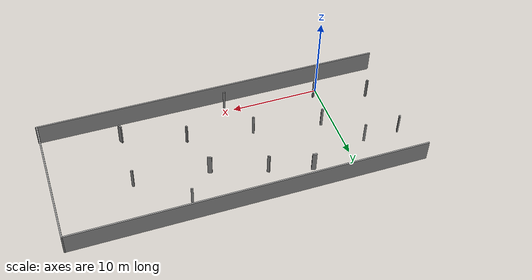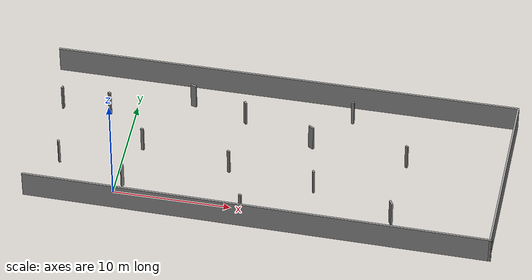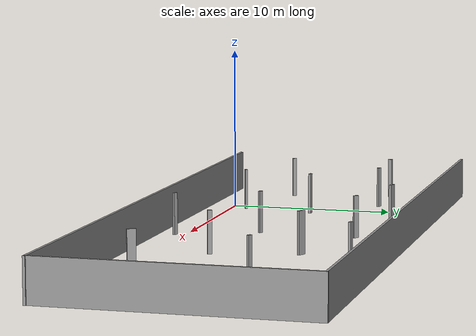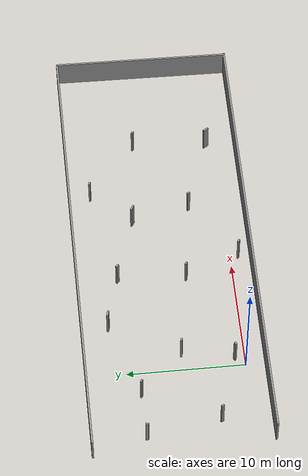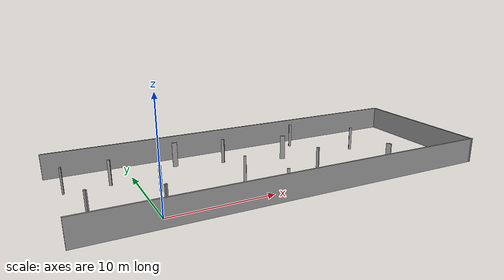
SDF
<?xml version='1.0'?>
<sdf version='1.6'>
  <model name='pole_field'>
    <pose frame=''>12.3477 5.75607 0 0 -0 0</pose>
    <link name='Wall_11'>
      <collision name='Wall_11_Collision'>
        <geometry>
          <box>
            <size>0.25 0.15 2.5</size>
          </box>
        </geometry>
        <pose frame=''>0 0 1.25 0 -0 0</pose>
      </collision>
      <visual name='Wall_11_Visual'>
        <pose frame=''>0 0 1.25 0 -0 0</pose>
        <geometry>
          <box>
            <size>0.25 0.15 2.5</size>
          </box>
        </geometry>
        <material>
          <script>
            <uri>file://media/materials/scripts/gazebo.material</uri>
            <name>Gazebo/Grey</name>
          </script>
          <ambient>1 1 1 1</ambient>
        </material>
        <meta>
          <layer>0</layer>
        </meta>
      </visual>
      <pose frame=''>-14.5401 3.1941 0 0 -0 -0.523599</pose>
    </link>
    <link name='Wall_15'>
      <collision name='Wall_15_Collision'>
        <geometry>
          <box>
            <size>0.25 0.15 2.5</size>
          </box>
        </geometry>
        <pose frame=''>0 0 1.25 0 -0 0</pose>
      </collision>
      <visual name='Wall_15_Visual'>
        <pose frame=''>0 0 1.25 0 -0 0</pose>
        <geometry>
          <box>
            <size>0.25 0.15 2.5</size>
          </box>
        </geometry>
        <material>
          <script>
            <uri>file://media/materials/scripts/gazebo.material</uri>
            <name>Gazebo/Grey</name>
          </script>
          <ambient>1 1 1 1</ambient>
        </material>
        <meta>
          <layer>0</layer>
        </meta>
      </visual>
      <pose frame=''>-17.5302 -3.12158 0 0 -0 -1.0472</pose>
    </link>
    <link name='Wall_19'>
      <collision name='Wall_19_Collision'>
        <geometry>
          <box>
            <size>0.25 0.15 2.5</size>
          </box>
        </geometry>
        <pose frame=''>0 0 1.25 0 -0 0</pose>
      </collision>
      <visual name='Wall_19_Visual'>
        <pose frame=''>0 0 1.25 0 -0 0</pose>
        <geometry>
          <box>
            <size>0.25 0.15 2.5</size>
          </box>
        </geometry>
        <material>
          <script>
            <uri>file://media/materials/scripts/gazebo.material</uri>
            <name>Gazebo/Grey</name>
          </script>
          <ambient>1 1 1 1</ambient>
        </material>
        <meta>
          <layer>0</layer>
        </meta>
      </visual>
      <pose frame=''>-10.9265 -0.473205 0 0 -0 -0.261799</pose>
    </link>
    <link name='Wall_21'>
      <collision name='Wall_21_Collision'>
        <geometry>
          <box>
            <size>0.5 0.15 2.5</size>
          </box>
        </geometry>
        <pose frame=''>0 0 1.25 0 -0 0</pose>
      </collision>
      <visual name='Wall_21_Visual'>
        <pose frame=''>0 0 1.25 0 -0 0</pose>
        <geometry>
          <box>
            <size>0.5 0.15 2.5</size>
          </box>
        </geometry>
        <material>
          <script>
            <uri>file://media/materials/scripts/gazebo.material</uri>
            <name>Gazebo/Grey</name>
          </script>
          <ambient>1 1 1 1</ambient>
        </material>
        <meta>
          <layer>0</layer>
        </meta>
      </visual>
      <pose frame=''>3.02036 2.32497 0 0 -0 -0.523599</pose>
    </link>
    <link name='Wall_24'>
      <collision name='Wall_24_Collision'>
        <geometry>
          <box>
            <size>0.5 0.15 2.5</size>
          </box>
        </geometry>
        <pose frame=''>0 0 1.25 0 -0 0</pose>
      </collision>
      <visual name='Wall_24_Visual'>
        <pose frame=''>0 0 1.25 0 -0 0</pose>
        <geometry>
          <box>
            <size>0.5 0.15 2.5</size>
          </box>
        </geometry>
        <material>
          <script>
            <uri>file://media/materials/scripts/gazebo.material</uri>
            <name>Gazebo/Grey</name>
          </script>
          <ambient>1 1 1 1</ambient>
        </material>
        <meta>
          <layer>0</layer>
        </meta>
      </visual>
      <pose frame=''>-7.69246 5.36728 0 0 -0 -0.261799</pose>
    </link>
    <link name='Wall_27'>
      <collision name='Wall_27_Collision'>
        <geometry>
          <box>
            <size>0.25 0.15 2.5</size>
          </box>
        </geometry>
        <pose frame=''>0 0 1.25 0 -0 0</pose>
      </collision>
      <visual name='Wall_27_Visual'>
        <pose frame=''>0 0 1.25 0 -0 0</pose>
        <geometry>
          <box>
            <size>0.25 0.15 2.5</size>
          </box>
        </geometry>
        <material>
          <script>
            <uri>file://media/materials/scripts/gazebo.material</uri>
            <name>Gazebo/Grey</name>
          </script>
          <ambient>1 1 1 1</ambient>
        </material>
        <meta>
          <layer>0</layer>
        </meta>
      </visual>
      <pose frame=''>-11.7257 -4.8722 0 0 -0 -2.61799</pose>
    </link>
    <link name='Wall_29'>
      <collision name='Wall_29_Collision'>
        <geometry>
          <box>
            <size>0.25 0.15 2.5</size>
          </box>
        </geometry>
        <pose frame=''>0 0 1.25 0 -0 0</pose>
      </collision>
      <visual name='Wall_29_Visual'>
        <pose frame=''>0 0 1.25 0 -0 0</pose>
        <geometry>
          <box>
            <size>0.25 0.15 2.5</size>
          </box>
        </geometry>
        <material>
          <script>
            <uri>file://media/materials/scripts/gazebo.material</uri>
            <name>Gazebo/Grey</name>
          </script>
          <ambient>1 1 1 1</ambient>
        </material>
        <meta>
          <layer>0</layer>
        </meta>
      </visual>
      <pose frame=''>-3.28447 -1.7019 0 0 -0 -0.523599</pose>
    </link>
    <link name='Wall_31'>
      <collision name='Wall_31_Collision'>
        <geometry>
          <box>
            <size>0.25 0.15 2.5</size>
          </box>
        </geometry>
        <pose frame=''>0 0 1.25 0 -0 0</pose>
      </collision>
      <visual name='Wall_31_Visual'>
        <pose frame=''>0 0 1.25 0 -0 0</pose>
        <geometry>
          <box>
            <size>0.25 0.15 2.5</size>
          </box>
        </geometry>
        <material>
          <script>
            <uri>file://media/materials/scripts/gazebo.material</uri>
            <name>Gazebo/Grey</name>
          </script>
          <ambient>1 1 1 1</ambient>
        </material>
        <meta>
          <layer>0</layer>
        </meta>
      </visual>
      <pose frame=''>4.10195 -2.69665 0 0 -0 -1.0472</pose>
    </link>
    <link name='Wall_33'>
      <collision name='Wall_33_Collision'>
        <geometry>
          <box>
            <size>0.25 0.15 2.5</size>
          </box>
        </geometry>
        <pose frame=''>0 0 1.25 0 -0 0</pose>
      </collision>
      <visual name='Wall_33_Visual'>
        <pose frame=''>0 0 1.25 0 -0 0</pose>
        <geometry>
          <box>
            <size>0.25 0.15 2.5</size>
          </box>
        </geometry>
        <material>
          <script>
            <uri>file://media/materials/scripts/gazebo.material</uri>
            <name>Gazebo/Grey</name>
          </script>
          <ambient>1 1 1 1</ambient>
        </material>
        <meta>
          <layer>0</layer>
        </meta>
      </visual>
      <pose frame=''>-1.41295 -6.4214 0 0 -0 -0.523599</pose>
    </link>
    <link name='Wall_35'>
      <collision name='Wall_35_Collision'>
        <geometry>
          <box>
            <size>0.25 0.15 2.5</size>
          </box>
        </geometry>
        <pose frame=''>0 0 1.25 0 -0 0</pose>
      </collision>
      <visual name='Wall_35_Visual'>
        <pose frame=''>0 0 1.25 0 -0 0</pose>
        <geometry>
          <box>
            <size>0.25 0.15 2.5</size>
          </box>
        </geometry>
        <material>
          <script>
            <uri>file://media/materials/scripts/gazebo.material</uri>
            <name>Gazebo/Grey</name>
          </script>
          <ambient>1 1 1 1</ambient>
        </material>
        <meta>
          <layer>0</layer>
        </meta>
      </visual>
      <pose frame=''>5.99677 5.79626 0 0 -0 -0.261799</pose>
    </link>
    <link name='Wall_37'>
      <collision name='Wall_37_Collision'>
        <geometry>
          <box>
            <size>0.25 0.15 2.5</size>
          </box>
        </geometry>
        <pose frame=''>0 0 1.25 0 -0 0</pose>
      </collision>
      <visual name='Wall_37_Visual'>
        <pose frame=''>0 0 1.25 0 -0 0</pose>
        <geometry>
          <box>
            <size>0.25 0.15 2.5</size>
          </box>
        </geometry>
        <material>
          <script>
            <uri>file://media/materials/scripts/gazebo.material</uri>
            <name>Gazebo/Grey</name>
          </script>
          <ambient>1 1 1 1</ambient>
        </material>
        <meta>
          <layer>0</layer>
        </meta>
      </visual>
      <pose frame=''>11.2809 1.55293 0 0 -0 -0.523599</pose>
    </link>
    <link name='Wall_39'>
      <collision name='Wall_39_Collision'>
        <geometry>
          <box>
            <size>0.5 0.15 2.5</size>
          </box>
        </geometry>
        <pose frame=''>0 0 1.25 0 -0 0</pose>
      </collision>
      <visual name='Wall_39_Visual'>
        <pose frame=''>0 0 1.25 0 -0 0</pose>
        <geometry>
          <box>
            <size>0.5 0.15 2.5</size>
          </box>
        </geometry>
        <material>
          <script>
            <uri>file://media/materials/scripts/gazebo.material</uri>
            <name>Gazebo/Grey</name>
          </script>
          <ambient>1 1 1 1</ambient>
        </material>
        <meta>
          <layer>0</layer>
        </meta>
      </visual>
      <pose frame=''>10.9996 -5.00191 0 0 -0 -1.0472</pose>
    </link>
    <link name='Wall_41'>
      <collision name='Wall_41_Collision'>
        <geometry>
          <box>
            <size>0.3 0.15 2.5</size>
          </box>
        </geometry>
        <pose frame=''>0 0 1.25 0 -0 0</pose>
      </collision>
      <visual name='Wall_41_Visual'>
        <pose frame=''>0 0 1.25 0 -0 0</pose>
        <geometry>
          <box>
            <size>0.3 0.15 2.5</size>
          </box>
        </geometry>
        <material>
          <script>
            <uri>file://media/materials/scripts/gazebo.material</uri>
            <name>Gazebo/Grey</name>
          </script>
          <ambient>1 1 1 1</ambient>
        </material>
        <meta>
          <layer>0</layer>
        </meta>
      </visual>
      <pose frame=''>-2.97395 4.15345 0 0 -0 2.35619</pose>
    </link>
    <link name='Wall_5'>
      <collision name='Wall_5_Collision'>
        <geometry>
          <box>
            <size>39.75 0.15 2.5</size>
          </box>
        </geometry>
        <pose frame=''>0 0 1.25 0 -0 0</pose>
      </collision>
      <visual name='Wall_5_Visual'>
        <pose frame=''>0 0 1.25 0 -0 0</pose>
        <geometry>
          <box>
            <size>39.75 0.15 2.5</size>
          </box>
        </geometry>
        <material>
          <script>
            <uri>file://media/materials/scripts/gazebo.material</uri>
            <name>Gazebo/Grey</name>
          </script>
          <ambient>1 1 1 1</ambient>
        </material>
        <meta>
          <layer>0</layer>
        </meta>
      </visual>
      <pose frame=''>-0.041279 7.65758 0 0 -0 0</pose>
    </link>
    <link name='Wall_6'>
      <collision name='Wall_6_Collision'>
        <geometry>
          <box>
            <size>15.4671 0.15 2.5</size>
          </box>
        </geometry>
        <pose frame=''>0 0 1.25 0 -0 0</pose>
      </collision>
      <visual name='Wall_6_Visual'>
        <pose frame=''>0 0 1.25 0 -0 0</pose>
        <geometry>
          <box>
            <size>15.4671 0.15 2.5</size>
          </box>
        </geometry>
        <material>
          <script>
            <uri>file://media/materials/scripts/gazebo.material</uri>
            <name>Gazebo/Grey</name>
          </script>
          <ambient>1 1 1 1</ambient>
        </material>
        <meta>
          <layer>0</layer>
        </meta>
      </visual>
      <pose frame=''>19.718 -0 0 0 -0 -1.58673</pose>
    </link>
    <link name='Wall_7'>
      <collision name='Wall_7_Collision'>
        <geometry>
          <box>
            <size>39.4494 0.15 2.5</size>
          </box>
        </geometry>
        <pose frame=''>0 0 1.25 0 -0 0</pose>
      </collision>
      <visual name='Wall_7_Visual'>
        <pose frame=''>0 0 1.25 0 -0 0</pose>
        <geometry>
          <box>
            <size>39.4494 0.15 2.5</size>
          </box>
        </geometry>
        <material>
          <script>
            <uri>file://media/materials/scripts/gazebo.material</uri>
            <name>Gazebo/Grey</name>
          </script>
          <ambient>1 1 1 1</ambient>
        </material>
        <meta>
          <layer>0</layer>
        </meta>
      </visual>
      <pose frame=''>0.028316 -7.49484 0 0 -0 3.13331</pose>
    </link>
    <link name='Wall_9'>
      <collision name='Wall_9_Collision'>
        <geometry>
          <box>
            <size>0.25 0.15 2.5</size>
          </box>
        </geometry>
        <pose frame=''>0 0 1.25 0 -0 0</pose>
      </collision>
      <visual name='Wall_9_Visual'>
        <pose frame=''>0 0 1.25 0 -0 0</pose>
        <geometry>
          <box>
            <size>0.25 0.15 2.5</size>
          </box>
        </geometry>
        <material>
          <script>
            <uri>file://media/materials/scripts/gazebo.material</uri>
            <name>Gazebo/Grey</name>
          </script>
          <ambient>1 1 1 1</ambient>
        </material>
        <meta>
          <layer>0</layer>
        </meta>
      </visual>
      <pose frame=''>-18.6255 3.12355 0 0 -0 -1.8326</pose>
    </link>
    <static>1</static>
  </model>
</sdf>
